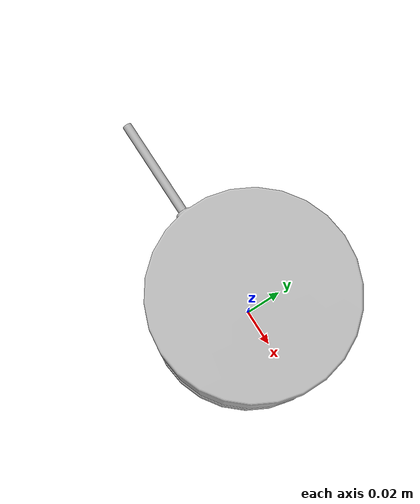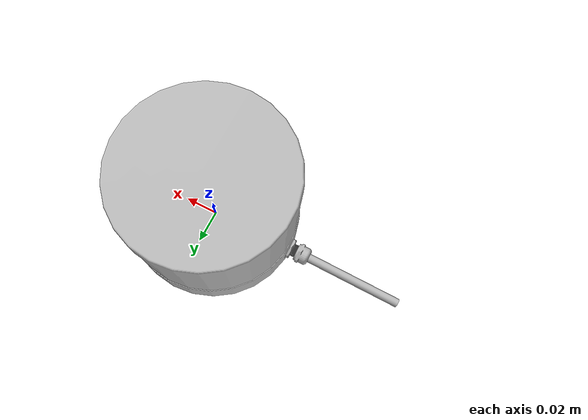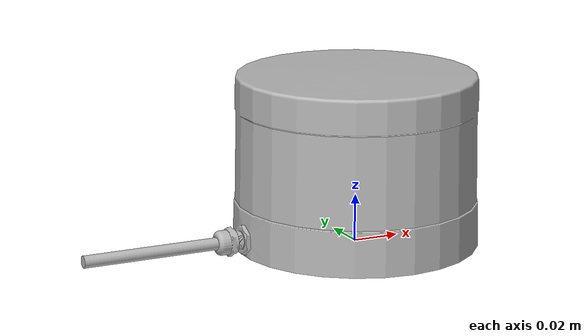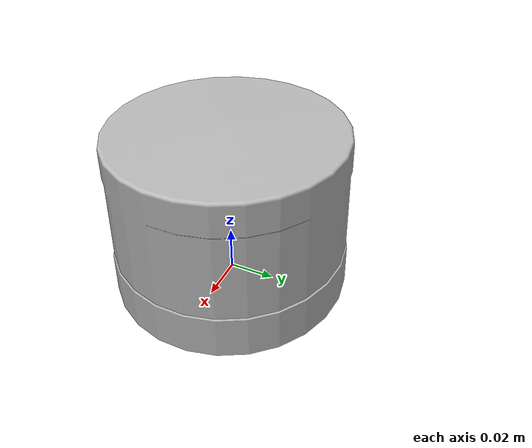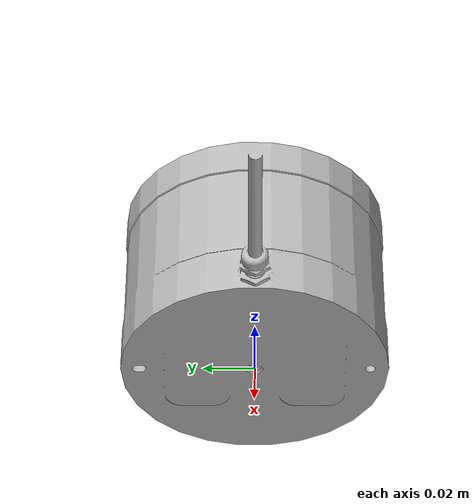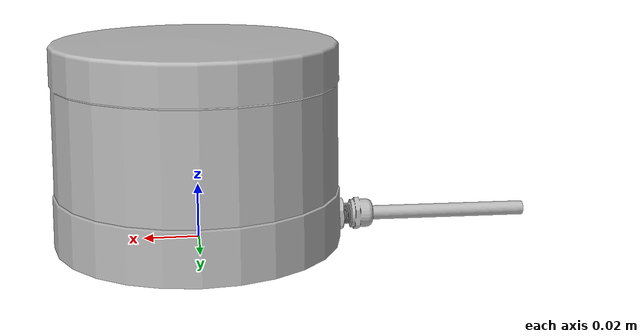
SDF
<?xml version="1.0"?>
<sdf version="1.5">

    <model name="velodyne_VLP-16">
    <link name="base">

      <inertial>
        <mass>0.83</mass>
        <inertia>
          <ixx>0.000909131</ixx>
          <iyy>0.000909131</iyy>
          <izz>0.001107105</izz>
          <ixy>0</ixy>
          <ixz>0</ixz>
          <iyz>0</iyz>
        </inertia>
      </inertial>

      <pose>0 0 0.03585 0 0 0</pose>
      <collision name="base_collision">
        <geometry>
          <cylinder>
            <radius>.05165</radius>
            <length>.0717</length>
          </cylinder>
        </geometry>
      </collision>

      <visual name="base_visual">
			<pose>0 0 -0.03585 0 0 0</pose>
        <geometry>
          <mesh>
          <uri>model://velodyne_vlp16/meshes/vlp16.stl</uri>
          </mesh>
        </geometry>
      </visual>

      <!-- Add a ray sensor, and give it a name -->
      <sensor type="ray" name="sensor">

        <pose>0 0 0 0 0 0</pose>

        <!-- Enable visualization to see the rays in the GUI -->
        <visualize>true</visualize>

        <!-- Set the update rate of the sensor -->
        <update_rate>30</update_rate>

        <ray>

          <!-- The scan element contains the horizontal and vertical beams.
          We are leaving out the vertical beams for this tutorial. -->
          <scan>

            <!-- The horizontal beams -->
            <horizontal>
              <!-- The velodyne has 16 beams(samples) -->
              <samples>16</samples>

              <resolution>1</resolution>

              <!-- Minimum angle in radians -->
              <min_angle>0</min_angle>

              <!-- Maximum angle in radians -->
              <max_angle>6.28319</max_angle>
            </horizontal>

            <vertical>
              <!-- The velodyne has 16 beams(samples) -->
              <samples>16</samples>

              <resolution>1</resolution>

              <!-- Minimum angle in radians -->
              <min_angle>0</min_angle>

              <!-- Maximum angle in radians -->
              <max_angle>0</max_angle>
            </vertical>
          </scan>

          <!-- Range defines characteristics of an individual beam -->
          <range>

            <!-- Minimum distance of the beam -->
            <min>0.0717</min>

            <!-- Maximum distance of the beam -->
            <max>10</max>

            <!-- Linear resolution of the beam -->
            <resolution>0.02</resolution>
          </range>
	    		<noise>
      		<!-- Use gaussian noise -->
      		<type>gaussian</type>
      		<mean>0.0</mean>
      		<stddev>0.02</stddev>
    			</noise>
        </ray>
      </sensor>
    </link>
    </model>
</sdf>
